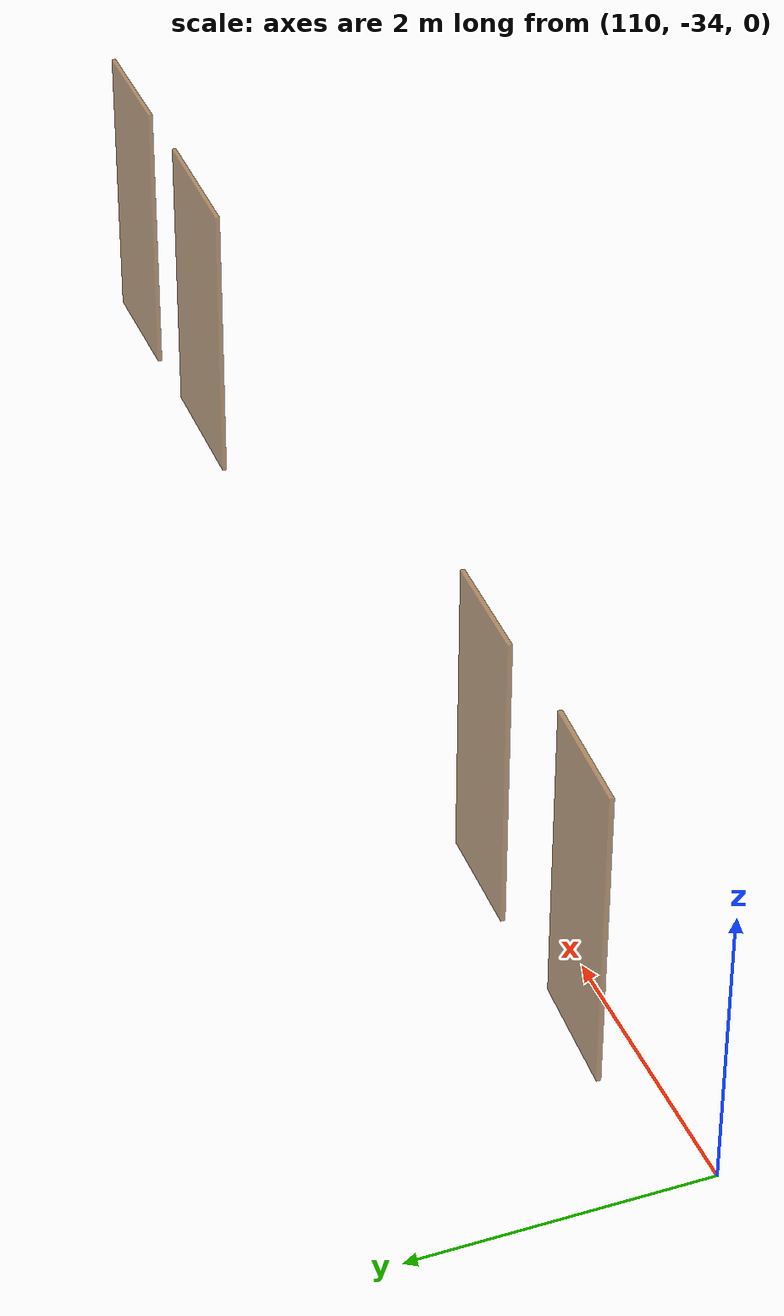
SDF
<sdf version="1.7">
 <world name="sim_world">
  <model name="puerta20">
   <pose>111.42940688912353 -33.69079725175551 0.0 0 0 -0.05792736840237623</pose>
   <link name="right">
    <pose>0 0 1.11 0 0 0</pose>
    <visual name="right_visual">
     <geometry><box><size>0.8816878807771851 0.03 2.2</size></box></geometry>
     <material>
      <ambient>0.5 0.25 0 0.6</ambient>
      <diffuse>0.5 0.25 0 0.6</diffuse>
      <pbr><metal><metalness>0.0</metalness></metal></pbr>
     </material>
    </visual>
    <collision name="right_collision">
     <geometry><box><size>0.8816878807771851 0.03 2.2</size></box></geometry>
     <surface><contact><collide_bitmask>0x02</collide_bitmask></contact></surface>
    </collision>
    <inertial>
     <mass>50.0</mass>
     <inertia><ixx>20.17041666666667</ixx><iyy>23.40572299628902</iyy><izz>3.242806329622349</izz></inertia>
    </inertial>
   </link>
   <joint name="right_joint" type="revolute">
    <parent>world</parent>
    <child>right</child>
    <axis><xyz>0 0 1</xyz><limit><lower>0</lower><upper>1.57</upper></limit></axis>
    <pose>0.44584394038859254 0 0 0 0 0</pose>
   </joint>
   <plugin name="register_component" filename="libregister_component.so">
    <component name="Door">
     <v_max_door>0.5</v_max_door>
     <a_max_door>0.3</a_max_door>
     <a_nom_door>0.15</a_nom_door>
     <dx_min_door>0.01</dx_min_door>
     <f_max_door>500.0</f_max_door>
     <ros_interface>true</ros_interface>
     <door name="puerta20" type="SwingDoor" left_joint_name="empty_joint" right_joint_name="right_joint"/>
    </component>
   </plugin>
  </model>
  <model name="puerta21">
   <pose>112.99944462910057 -33.70432389904029 0.0 0 0 3.109967890999371</pose>
   <link name="right">
    <pose>0 0 1.11 0 0 0</pose>
    <visual name="right_visual">
     <geometry><box><size>0.846919796126006 0.03 2.2</size></box></geometry>
     <material>
      <ambient>0.5 0.25 0 0.6</ambient>
      <diffuse>0.5 0.25 0 0.6</diffuse>
      <pbr><metal><metalness>0.0</metalness></metal></pbr>
     </material>
    </visual>
    <collision name="right_collision">
     <geometry><box><size>0.846919796126006 0.03 2.2</size></box></geometry>
     <surface><contact><collide_bitmask>0x02</collide_bitmask></contact></surface>
    </collision>
    <inertial>
     <mass>50.0</mass>
     <inertia><ixx>20.17041666666667</ixx><iyy>23.155304754458818</iyy><izz>2.9923880877921483</izz></inertia>
    </inertial>
   </link>
   <joint name="right_joint" type="revolute">
    <parent>world</parent>
    <child>right</child>
    <axis><xyz>0 0 -1</xyz><limit><lower>0</lower><upper>1.57</upper></limit></axis>
    <pose>0.428459898063003 0 0 0 0 0</pose>
   </joint>
   <plugin name="register_component" filename="libregister_component.so">
    <component name="Door">
     <v_max_door>0.5</v_max_door>
     <a_max_door>0.3</a_max_door>
     <a_nom_door>0.15</a_nom_door>
     <dx_min_door>0.01</dx_min_door>
     <f_max_door>500.0</f_max_door>
     <ros_interface>true</ros_interface>
     <door name="puerta21" type="SwingDoor" left_joint_name="empty_joint" right_joint_name="right_joint"/>
    </component>
   </plugin>
  </model>
  <model name="puerta24">
   <pose>118.72565519040381 -33.73308117250576 0.0 0 0 -0.027403382231023843</pose>
   <link name="right">
    <pose>0 0 1.11 0 0 0</pose>
    <visual name="right_visual">
     <geometry><box><size>1.1001909273704624 0.03 2.2</size></box></geometry>
     <material>
      <ambient>0.5 0.25 0 0.6</ambient>
      <diffuse>0.5 0.25 0 0.6</diffuse>
      <pbr><metal><metalness>0.0</metalness></metal></pbr>
     </material>
    </visual>
    <collision name="right_collision">
     <geometry><box><size>1.1001909273704624 0.03 2.2</size></box></geometry>
     <surface><contact><collide_bitmask>0x02</collide_bitmask></contact></surface>
    </collision>
    <inertial>
     <mass>50.0</mass>
     <inertia><ixx>20.17041666666667</ixx><iyy>25.210083652784498</iyy><izz>5.047166986117825</izz></inertia>
    </inertial>
   </link>
   <joint name="right_joint" type="revolute">
    <parent>world</parent>
    <child>right</child>
    <axis><xyz>0 0 1</xyz><limit><lower>0</lower><upper>1.57</upper></limit></axis>
    <pose>0.5550954636852312 0 0 0 0 0</pose>
   </joint>
   <plugin name="register_component" filename="libregister_component.so">
    <component name="Door">
     <v_max_door>0.5</v_max_door>
     <a_max_door>0.3</a_max_door>
     <a_nom_door>0.15</a_nom_door>
     <dx_min_door>0.01</dx_min_door>
     <f_max_door>500.0</f_max_door>
     <ros_interface>true</ros_interface>
     <door name="puerta24" type="SwingDoor" left_joint_name="empty_joint" right_joint_name="right_joint"/>
    </component>
   </plugin>
  </model>
  <model name="puerta25">
   <pose>120.3370933065184 -33.75588503822381 0.0 0 0 3.1262230047063087</pose>
   <link name="right">
    <pose>0 0 1.11 0 0 0</pose>
    <visual name="right_visual">
     <geometry><box><size>0.9782561890716672 0.03 2.2</size></box></geometry>
     <material>
      <ambient>0.5 0.25 0 0.6</ambient>
      <diffuse>0.5 0.25 0 0.6</diffuse>
      <pbr><metal><metalness>0.0</metalness></metal></pbr>
     </material>
    </visual>
    <collision name="right_collision">
     <geometry><box><size>0.9782561890716672 0.03 2.2</size></box></geometry>
     <surface><contact><collide_bitmask>0x02</collide_bitmask></contact></surface>
    </collision>
    <inertial>
     <mass>50.0</mass>
     <inertia><ixx>20.17041666666667</ixx><iyy>24.15410488107093</iyy><izz>3.9911882144042568</izz></inertia>
    </inertial>
   </link>
   <joint name="right_joint" type="revolute">
    <parent>world</parent>
    <child>right</child>
    <axis><xyz>0 0 -1</xyz><limit><lower>0</lower><upper>1.57</upper></limit></axis>
    <pose>0.4941280945358336 0 0 0 0 0</pose>
   </joint>
   <plugin name="register_component" filename="libregister_component.so">
    <component name="Door">
     <v_max_door>0.5</v_max_door>
     <a_max_door>0.3</a_max_door>
     <a_nom_door>0.15</a_nom_door>
     <dx_min_door>0.01</dx_min_door>
     <f_max_door>500.0</f_max_door>
     <ros_interface>true</ros_interface>
     <door name="puerta25" type="SwingDoor" left_joint_name="empty_joint" right_joint_name="right_joint"/>
    </component>
   </plugin>
  </model>
 </world>
</sdf>
